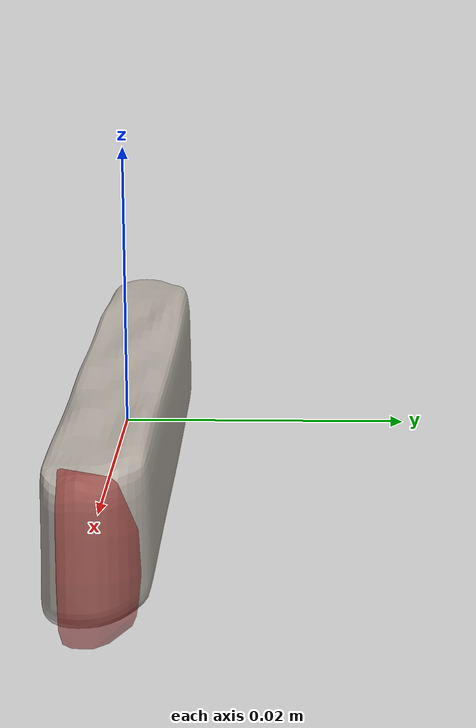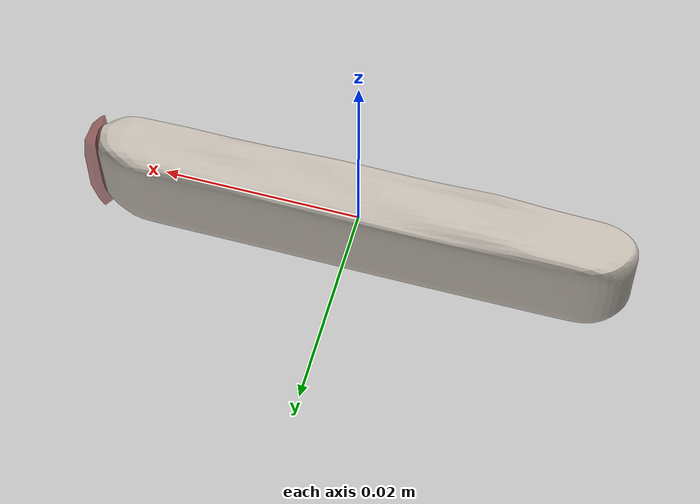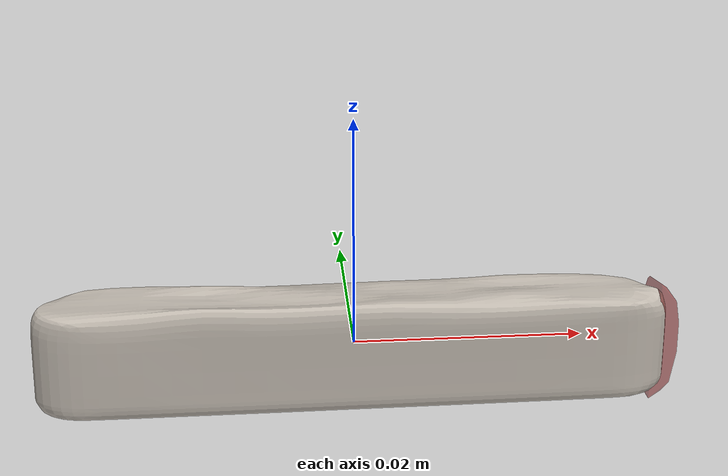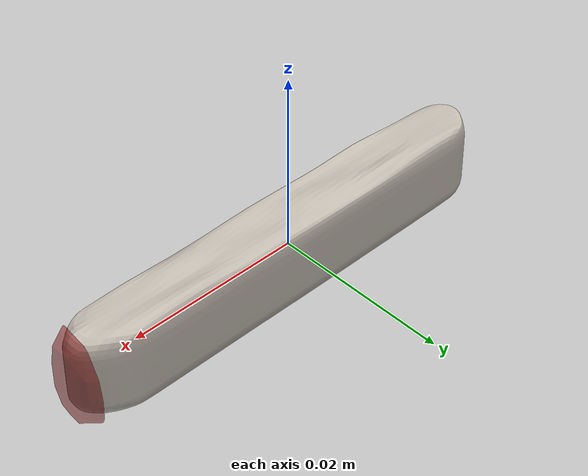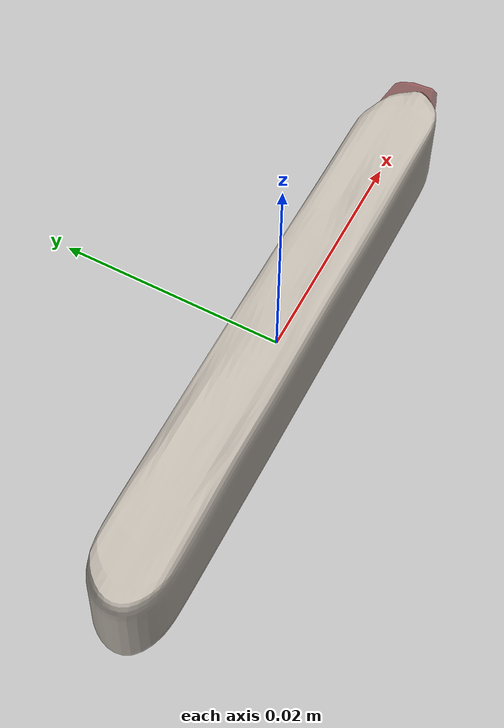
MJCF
<?xml version='1.0' encoding='UTF-8'?>
<mujoco model="model">
  <compiler angle="radian"/>
  <asset>
    <mesh file="visual/CreamCheese010.obj" name="CreamCheese010_vis"/>
    <texture file="visual/T_BC001.png" name="CreamCheese010_material" type="2d"/>
    <material name="CreamCheese010_material" rgba="1 1 1 1.0" texture="CreamCheese010_material" shininess="0.10000002384185791" specular="0.33333333333333337"/>
    <mesh file="collision/CreamCheese010001.obj" name="CreamCheese010001_mesh"/>
  </asset>
  <default>
    <default class="visual">
      <geom conaffinity="0" contype="0" group="1" type="mesh"/>
    </default>
    <default class="collision">
      <geom group="0" rgba="0.5 0 0 0.5"/>
    </default>
    <default class="spawn">
      <geom group="0" rgba="1 1 1 0.5" contype="0" conaffinity="0"/>
      <site group="0" rgba="1 1 1 0.5"/>
    </default>
    <default class="region">
      <geom group="1" conaffinity="0" contype="0" rgba="0 1 0 0"/>
    </default>
  </default>
  <worldbody>
    <body>
      <body name="object">
        <geom mesh="CreamCheese010_vis" type="mesh" solimp="0.998 0.998 0.001" solref="0.001 1" density="100" friction="0.95 0.3 0.1" class="visual" material="CreamCheese010_material"/>
        <geom mesh="CreamCheese010001_mesh" type="mesh" class="collision"/>
        <geom class="region" name="reg_bbox" type="box" pos="-4.320000000002224e-06 -3.7349999999995695e-06 -7.681000000000007e-05" size="0.02806098 0.00421501 0.00569601"/>
      </body>
    </body>
  </worldbody>
  <actuator/>
</mujoco>
